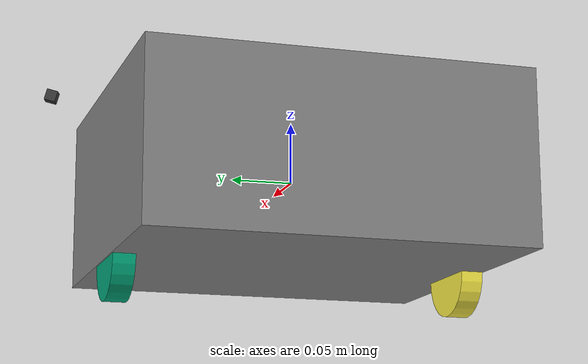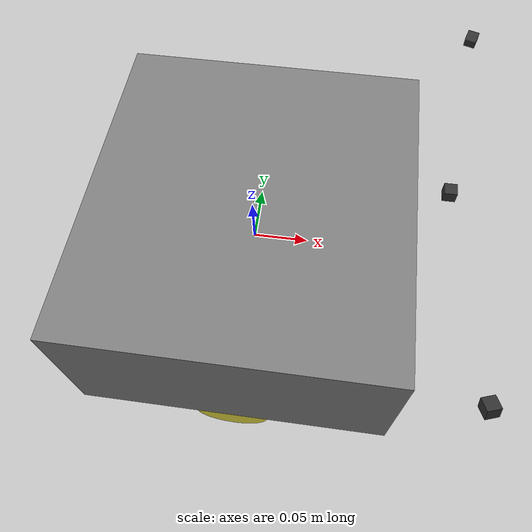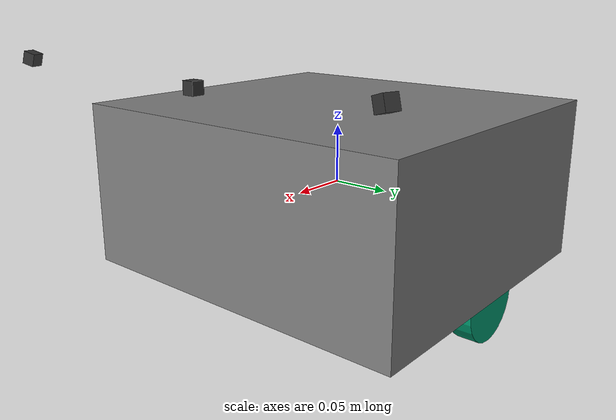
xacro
<?xml version="1.0"?>
<robot name="turtlebot3_tunnel" xmlns:xacro="http://ros.org/wiki/xacro">

  <link name="base_footprint"/>

  <joint name="base_joint" type="fixed">
    <parent link="base_footprint"/>
    <child link="base_link"/>
    <origin xyz="0 0 0" rpy="0 0 0"/>
  </joint>

  <link name="base_link">
    <visual>
      <geometry><box size="0.281 0.306 0.141"/></geometry>
      <material name="gray"><color rgba="0.5 0.5 0.5 1.0"/></material>
    </visual>
    <collision>
      <geometry><box size="0.281 0.306 0.141"/></geometry>
    </collision>
    <inertial>
      <mass value="1.5"/>
      <inertia ixx="0.01" ixy="0" ixz="0" iyy="0.01" iyz="0" izz="0.01"/>
    </inertial>
  </link>

  <link name="wheel_left_link">
    <visual><geometry><cylinder radius="0.033" length="0.018"/></geometry></visual>
    <collision><geometry><cylinder radius="0.033" length="0.018"/></geometry></collision>
    <inertial><mass value="0.1"/><inertia ixx="0.0001" ixy="0" ixz="0" iyy="0.0001" iyz="0" izz="0.0001"/></inertial>
  </link>
  <joint name="wheel_left_joint" type="continuous">
    <parent link="base_link"/>
    <child link="wheel_left_link"/>
    <origin xyz="0 0.143 -0.07" rpy="-1.5708 0 0"/>
    <axis xyz="0 0 1"/>
  </joint>

  <link name="wheel_right_link">
    <visual><geometry><cylinder radius="0.033" length="0.018"/></geometry></visual>
    <collision><geometry><cylinder radius="0.033" length="0.018"/></geometry></collision>
    <inertial><mass value="0.1"/><inertia ixx="0.0001" ixy="0" ixz="0" iyy="0.0001" iyz="0" izz="0.0001"/></inertial>
  </link>
  <joint name="wheel_right_joint" type="continuous">
    <parent link="base_link"/>
    <child link="wheel_right_link"/>
    <origin xyz="0 -0.143 -0.07" rpy="-1.5708 0 0"/>
    <axis xyz="0 0 1"/>
  </joint>

  <link name="caster_link">
    <collision><geometry><sphere radius="0.03"/></geometry></collision>
    <inertial><mass value="0.1"/><inertia ixx="0.0001" ixy="0" ixz="0" iyy="0.0001" iyz="0" izz="0.0001"/></inertial>
  </link>
  <joint name="caster_joint" type="fixed">
    <parent link="base_link"/>
    <child link="caster_link"/>
    <origin xyz="0.1 0 -0.07" rpy="0 0 0"/>
  </joint>

  <link name="rear_caster_link">
    <collision><geometry><sphere radius="0.03"/></geometry></collision>
    <inertial><mass value="0.1"/><inertia ixx="0.0001" ixy="0" ixz="0" iyy="0.0001" iyz="0" izz="0.0001"/></inertial>
  </link>
  <joint name="rear_caster_joint" type="fixed">
    <parent link="base_link"/>
    <child link="rear_caster_link"/>
    <origin xyz="-0.1 0 -0.07" rpy="0 0 0"/>
  </joint>

  <link name="lidar_link"/>
  <joint name="lidar_joint" type="fixed">
    <parent link="base_link"/>
    <child link="lidar_link"/>
    <origin xyz="0.1 0 0.08" rpy="0 0 0"/>
  </joint>

  <joint name="left_camera_joint" type="fixed">
    <origin xyz="0.18 0.17 0.11" rpy="0 -0.28 1.25"/>
    <parent link="base_link"/>
    <child link="left_camera_link"/>
  </joint>

  <link name="left_camera_link">
    <visual>
      <geometry><box size="0.01 0.01 0.01"/></geometry>
      <material name="dark_gray"><color rgba="0.2 0.2 0.2 1.0"/></material>
    </visual>
    <inertial>
      <mass value="0.001"/>
      <inertia ixx="0.00001" ixy="0" ixz="0" iyy="0.00001" iyz="0" izz="0.00001"/>
    </inertial>
  </link>

  <joint name="left_camera_optical_joint" type="fixed">
    <origin xyz="0 0 0" rpy="-1.5708 0 -1.5708"/>
    <parent link="left_camera_link"/>
    <child link="left_camera_optical_frame"/>
  </joint>

  <link name="left_camera_optical_frame"/>

  <joint name="top_camera_joint" type="fixed">
    <origin xyz="0.16 0 0.10" rpy="0 -1.5708 0"/>
    <parent link="base_link"/>
    <child link="top_camera_link"/>
  </joint>

  <link name="top_camera_link">
    <visual>
      <geometry><box size="0.01 0.01 0.01"/></geometry>
      <material name="dark_gray"><color rgba="0.2 0.2 0.2 1.0"/></material>
    </visual>
    <inertial>
      <mass value="0.001"/>
      <inertia ixx="0.00001" ixy="0" ixz="0" iyy="0.00001" iyz="0" izz="0.00001"/>
    </inertial>
  </link>

  <joint name="top_camera_optical_joint" type="fixed">
    <origin xyz="0 0 0" rpy="-1.5708 0 -1.5708"/>
    <parent link="top_camera_link"/>
    <child link="top_camera_optical_frame"/>
  </joint>

  <link name="top_camera_optical_frame"/>

  <joint name="right_camera_joint" type="fixed">
    <origin xyz="0.18 -0.17 0.11" rpy="0 -0.28 -1.25"/>
    <parent link="base_link"/>
    <child link="right_camera_link"/>
  </joint>

  <link name="right_camera_link">
    <visual>
      <geometry><box size="0.01 0.01 0.01"/></geometry>
      <material name="dark_gray"><color rgba="0.2 0.2 0.2 1.0"/></material>
    </visual>
    <inertial>
      <mass value="0.001"/>
      <inertia ixx="0.00001" ixy="0" ixz="0" iyy="0.00001" iyz="0" izz="0.00001"/>
    </inertial>
  </link>

  <joint name="right_camera_optical_joint" type="fixed">
    <origin xyz="0 0 0" rpy="-1.5708 0 -1.5708"/>
    <parent link="right_camera_link"/>
    <child link="right_camera_optical_frame"/>
  </joint>

  <link name="right_camera_optical_frame"/>

  <gazebo>
    <plugin filename="libignition-gazebo-diff-drive-system.so" name="ignition::gazebo::systems::DiffDrive">
      <left_joint>wheel_left_joint</left_joint>
      <right_joint>wheel_right_joint</right_joint>
      <wheel_separation>0.286</wheel_separation>
      <wheel_radius>0.033</wheel_radius>
      <odom_publish_frequency>30</odom_publish_frequency>
      <topic>cmd_vel</topic>
      <odom_topic>odom</odom_topic>
      <tf_topic>tf</tf_topic>
      <frame_id>odom</frame_id>
      <child_frame_id>base_link</child_frame_id>
    </plugin>
  </gazebo>

  <gazebo reference="caster_link">
    <mu1>0.0</mu1>
    <mu2>0.0</mu2>
  </gazebo>

  <gazebo reference="rear_caster_link">
    <mu1>0.0</mu1>
    <mu2>0.0</mu2>
  </gazebo>

  <gazebo reference="lidar_link">
    <sensor name="lidar" type="gpu_lidar">
      <update_rate>10</update_rate>
      <topic>scan</topic>
      <lidar>
        <scan>
          <horizontal>
            <samples>360</samples>
            <resolution>1</resolution>
            <min_angle>-3.14159</min_angle>
            <max_angle>3.14159</max_angle>
          </horizontal>
        </scan>
        <range>
          <min>0.12</min>
          <max>10.0</max>
        </range>
      </lidar>
      <always_on>1</always_on>
      <visualize>true</visualize>
    </sensor>
  </gazebo>

  <gazebo reference="left_camera_link">
    <sensor name="left_rgbd_camera" type="rgbd_camera">
      <topic>/left_camera</topic>
      <gz_frame_id>left_camera_optical_frame</gz_frame_id>
      <update_rate>15.0</update_rate>
      <camera>
        <horizontal_fov>1.70</horizontal_fov>
        <image>
          <width>640</width>
          <height>480</height>
        </image>
        <clip>
          <near>0.05</near>
          <far>1.3</far>
        </clip>
      </camera>
      <always_on>true</always_on>
      <visualize>true</visualize>
    </sensor>
  </gazebo>

  <gazebo reference="top_camera_link">
    <sensor name="top_rgbd_camera" type="rgbd_camera">
      <topic>/top_camera</topic>
      <gz_frame_id>top_camera_optical_frame</gz_frame_id>
      <update_rate>15.0</update_rate>
      <camera>
        <horizontal_fov>1.92</horizontal_fov>
        <image>
          <width>640</width>
          <height>480</height>
        </image>
        <clip>
          <near>0.05</near>
          <far>1.3</far>
        </clip>
      </camera>
      <always_on>true</always_on>
      <visualize>true</visualize>
    </sensor>
  </gazebo>

  <gazebo reference="right_camera_link">
    <sensor name="right_rgbd_camera" type="rgbd_camera">
      <topic>/right_camera</topic>
      <gz_frame_id>right_camera_optical_frame</gz_frame_id>
      <update_rate>15.0</update_rate>
      <camera>
        <horizontal_fov>1.70</horizontal_fov>
        <image>
          <width>640</width>
          <height>480</height>
        </image>
        <clip>
          <near>0.05</near>
          <far>1.3</far>
        </clip>
      </camera>
      <always_on>true</always_on>
      <visualize>true</visualize>
    </sensor>
  </gazebo>

</robot>
